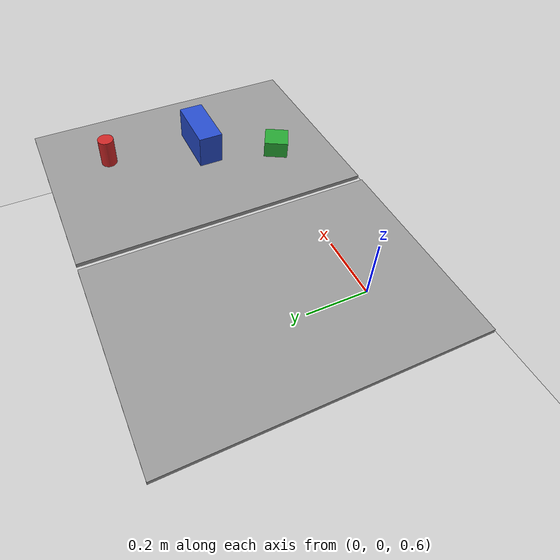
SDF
<sdf version="1.4">
 <world name="default">
  <include><uri>model://ground</uri><name>ground</name><pose>-0.20 0.60 0.0 0 0 0</pose></include>
  <light type="directional" name="lab_light">
   <pose>1.36691 -3.17532 2.46409 1.29615 -0 0</pose>
   <diffuse>.8 .8 .8 1</diffuse>
   <specular>.2 .2 .2 1</specular>
   <attenuation>
    <range>20</range>
    <constant>0.9</constant>
    <linear>0.01</linear>
    <quadratic>0.001</quadratic>
   </attenuation>
   <direction>0 0 -1</direction>
  </light>
  <include>
   <uri>model://optical_table</uri>
   <static>true</static>
   <name>optical_table_1</name>
   <pose>0 0.3 0.727 0 -0 1.5708</pose>
  </include>
  <include>
   <uri>model://optical_table</uri>
   <static>true</static>
   <name>optical_table</name>
   <pose>0.62 0.3 0.727 0 -0 1.5708</pose>
  </include>
  <include>
   <uri>model://RedCylinder</uri>
   <static>false</static>
   <name>RedCylinder</name>
   <pose>0.7 0.55 0.75 0 -0 0</pose>
  </include>
  <include>
   <uri>model://BlueCuboid</uri>
   <static>false</static>
   <name>BlueCuboid</name>
   <pose>0.65 0.25 0.75 0 -0 1.57</pose>
  </include>
  <include>
   <uri>model://GreenCube</uri>
   <static>false</static>
   <name>GreenCube</name>
   <pose>0.54 0.03 0.75 0 -0 -0.5</pose>
  </include>
  <physics type="ode">
   <gravity>0.000000 0.000000 -9.810000</gravity>
   <ode>
    <solver><type>quick</type><iters>100</iters><precon_iters>0</precon_iters><sor>1.000000</sor></solver>
    <constraints>
     <cfm>0.000000</cfm>
     <erp>0.500000</erp>
     <contact_max_correcting_vel>1000.000000</contact_max_correcting_vel>
     <contact_surface_layer>0.00000</contact_surface_layer>
    </constraints>
   </ode>
   <real_time_update_rate>1000.000000</real_time_update_rate>
   <max_step_size>0.001000</max_step_size>
  </physics>
  <scene><ambient>0.4 0.4 0.4 1</ambient><background>0.7 0.7 1 1</background><shadows>1</shadows></scene>
 </world>
</sdf>

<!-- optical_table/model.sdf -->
<sdf version='1.6'>
  <model name='optical_table'>
    <link name='link_0'>
      <pose frame=''>0 0 0 0 -0 0</pose>
      <inertial>
        <mass>1</mass>
        <inertia>
          <ixx>0.166667</ixx>
          <ixy>0</ixy>
          <ixz>0</ixz>
          <iyy>0.166667</iyy>
          <iyz>0</iyz>
          <izz>0.166667</izz>
        </inertia>
        <pose frame=''>0 0 0 0 -0 0</pose>
      </inertial>
      <gravity>0</gravity>
      <self_collide>0</self_collide>
      <kinematic>0</kinematic>
      <visual name='visual'>
        <pose frame=''>0 0 0 0 -0 0</pose>
        <geometry>
          <box>
            <size>0.9 0.6 0.0127</size>
          </box>
        </geometry>
        <material>
          <lighting>1</lighting>
          <script>
            <uri>file://media/materials/scripts/gazebo.material</uri>
            <name>Gazebo/Grey</name>
          </script>
          <ambient>0.3 0.3 0.3 1</ambient>
          <diffuse>0.7 0.7 0.7 1</diffuse>
          <specular>0.01 0.01 0.01 1</specular>
          <emissive>0 0 0 1</emissive>
          <shader type='vertex'>
            <normal_map>__default__</normal_map>
          </shader>
        </material>
        <cast_shadows>1</cast_shadows>
        <transparency>0</transparency>
      </visual>
      <collision name='collision'>
        <laser_retro>0</laser_retro>
        <max_contacts>10</max_contacts>
        <pose frame=''>0 0 0 0 -0 0</pose>
        <geometry>
          <box>
            <size>0.9 0.6 0.0127</size>
          </box>
        </geometry>
        <surface>
          <friction>
            <ode>
              <mu>1</mu>
              <mu2>1</mu2>
              <fdir1>0 0 0</fdir1>
              <slip1>0</slip1>
              <slip2>0</slip2>
            </ode>
            <torsional>
              <coefficient>1</coefficient>
              <patch_radius>0</patch_radius>
              <surface_radius>0</surface_radius>
              <use_patch_radius>1</use_patch_radius>
              <ode>
                <slip>0</slip>
              </ode>
            </torsional>
          </friction>
          <bounce>
            <restitution_coefficient>0</restitution_coefficient>
            <threshold>1e+06</threshold>
          </bounce>
          <contact>
            <collide_without_contact>0</collide_without_contact>
            <collide_without_contact_bitmask>1</collide_without_contact_bitmask>
            <collide_bitmask>1</collide_bitmask>
            <ode>
              <soft_cfm>0</soft_cfm>
              <soft_erp>0.2</soft_erp>
              <kp>1e+13</kp>
              <kd>1</kd>
              <max_vel>0.01</max_vel>
              <min_depth>0</min_depth>
            </ode>
            <bullet>
              <split_impulse>1</split_impulse>
              <split_impulse_penetration_threshold>-0.01</split_impulse_penetration_threshold>
              <soft_cfm>0</soft_cfm>
              <soft_erp>0.2</soft_erp>
              <kp>1e+13</kp>
              <kd>1</kd>
            </bullet>
          </contact>
        </surface>
      </collision>
    </link>
    <static>0</static>
    <allow_auto_disable>1</allow_auto_disable>
  </model>
</sdf>

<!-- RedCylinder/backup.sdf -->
<sdf version='1.6'>
  <model name='RedCylinder'>
    <link name='link_0'>
      <pose frame=''>0 0 0 0 -0 0</pose>
      <inertial>
        <mass>0.75</mass>
        <inertia>
          <ixx>0.145833</ixx>
          <ixy>0</ixy>
          <ixz>0</ixz>
          <iyy>0.145833</iyy>
          <iyz>0</iyz>
          <izz>0.125</izz>
        </inertia>
        <pose frame=''>0 0 0 0 -0 0</pose>
      </inertial>
      <gravity>1</gravity>
      <self_collide>0</self_collide>
      <kinematic>0</kinematic>
      <visual name='visual'>
        <pose frame=''>0 0 0 0 -0 0</pose>
        <geometry>
          <cylinder>
            <radius>0.025</radius>
            <length>0.15</length>
          </cylinder>
        </geometry>
        <material>
          <lighting>1</lighting>
          <script>
            <uri>file://media/materials/scripts/gazebo.material</uri>
            <name>Gazebo/Red</name>
          </script>
          <ambient>0.8 0.1 0.1 1</ambient>
          <diffuse>0.7 0.1 0.1 1</diffuse>
          <specular>0.01 0.01 0.01 1</specular>
          <emissive>0 0 0 1</emissive>
          <shader type='vertex'>
            <normal_map>__default__</normal_map>
          </shader>
        </material>
        <cast_shadows>1</cast_shadows>
        <transparency>0</transparency>
      </visual>
      <collision name='collision'>
        <laser_retro>0</laser_retro>
        <max_contacts>10</max_contacts>
        <pose frame=''>0 0 0 0 -0 0</pose>
        <geometry>
          <cylinder>
            <radius>0.025</radius>
            <length>0.1</length>
          </cylinder>
        </geometry>
        <surface>
          <friction>
            <ode>
              <mu>1</mu>
              <mu2>1</mu2>
              <fdir1>0 0 0</fdir1>
              <slip1>0</slip1>
              <slip2>0</slip2>
            </ode>
            <torsional>
              <coefficient>1</coefficient>
              <patch_radius>0</patch_radius>
              <surface_radius>0</surface_radius>
              <use_patch_radius>1</use_patch_radius>
              <ode>
                <slip>0</slip>
              </ode>
            </torsional>
          </friction>
          <bounce>
            <restitution_coefficient>0</restitution_coefficient>
            <threshold>1e+06</threshold>
          </bounce>
          <contact>
            <collide_without_contact>0</collide_without_contact>
            <collide_without_contact_bitmask>1</collide_without_contact_bitmask>
            <collide_bitmask>1</collide_bitmask>
            <ode>
              <soft_cfm>0</soft_cfm>
              <soft_erp>0.2</soft_erp>
              <kp>1e+13</kp>
              <kd>1</kd>
              <max_vel>0.01</max_vel>
              <min_depth>0</min_depth>
            </ode>
            <bullet>
              <split_impulse>1</split_impulse>
              <split_impulse_penetration_threshold>-0.01</split_impulse_penetration_threshold>
              <soft_cfm>0</soft_cfm>
              <soft_erp>0.2</soft_erp>
              <kp>1e+13</kp>
              <kd>1</kd>
            </bullet>
          </contact>
        </surface>
      </collision>
    </link>
    <static>0</static>
    <allow_auto_disable>1</allow_auto_disable>
  </model>
</sdf>

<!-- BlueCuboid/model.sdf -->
<sdf version='1.6'>
  <model name='BlueCuboid'>
    <link name='link_0'>
      <pose frame=''>0 0 0 0 -0 0</pose>
      <inertial>
        <mass>0.5</mass>
        <inertia>
          <ixx>0.166667</ixx>
          <ixy>0</ixy>
          <ixz>0</ixz>
          <iyy>0.166667</iyy>
          <iyz>0</iyz>
          <izz>0.166667</izz>
        </inertia>
        <pose frame=''>0 0 0 0 -0 0</pose>
      </inertial>
      <gravity>1</gravity>
      <self_collide>0</self_collide>
      <kinematic>0</kinematic>
      <visual name='visual'>
        <pose frame=''>0 0 0 0 -0 0</pose>
        <geometry>
          <box>
            <size>0.075 0.175 0.175</size>
          </box>
        </geometry>
        <material>
          <lighting>1</lighting>
          <script>
            <uri>file://media/materials/scripts/gazebo.material</uri>
            <name>Gazebo/Blue</name>
          </script>
          <ambient>0.05 0.1 0.8 1</ambient>
          <diffuse>0.1 0.3 0.8 1</diffuse>
          <specular>0.01 0.21 0.01 1</specular>
          <emissive>0 0 0 1</emissive>
          <shader type='vertex'>
            <normal_map>__default__</normal_map>
          </shader>
        </material>
        <cast_shadows>1</cast_shadows>
        <transparency>0</transparency>
      </visual>
      <collision name='collision'>
        <laser_retro>0</laser_retro>
        <max_contacts>10</max_contacts>
        <pose frame=''>0 0 0 0 -0 0</pose>
        <geometry>
          <box>
            <size>0.075 0.175 0.175</size>
          </box>
        </geometry>
        <surface>
          <friction>
            <ode>
              <mu>1</mu>
              <mu2>1</mu2>
              <fdir1>0 0 0</fdir1>
              <slip1>0</slip1>
              <slip2>0</slip2>
            </ode>
            <torsional>
              <coefficient>1</coefficient>
              <patch_radius>0</patch_radius>
              <surface_radius>0</surface_radius>
              <use_patch_radius>1</use_patch_radius>
              <ode>
                <slip>0</slip>
              </ode>
            </torsional>
          </friction>
          <bounce>
            <restitution_coefficient>0</restitution_coefficient>
            <threshold>1e+06</threshold>
          </bounce>
          <contact>
            <collide_without_contact>0</collide_without_contact>
            <collide_without_contact_bitmask>1</collide_without_contact_bitmask>
            <collide_bitmask>1</collide_bitmask>
            <ode>
              <soft_cfm>0</soft_cfm>
              <soft_erp>0.2</soft_erp>
              <kp>1e+13</kp>
              <kd>1</kd>
              <max_vel>0.01</max_vel>
              <min_depth>0</min_depth>
            </ode>
            <bullet>
              <split_impulse>1</split_impulse>
              <split_impulse_penetration_threshold>-0.01</split_impulse_penetration_threshold>
              <soft_cfm>0</soft_cfm>
              <soft_erp>0.2</soft_erp>
              <kp>1e+13</kp>
              <kd>1</kd>
            </bullet>
          </contact>
        </surface>
      </collision>
    </link>
    <static>0</static>
    <allow_auto_disable>1</allow_auto_disable>
  </model>
</sdf>

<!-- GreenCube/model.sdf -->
<sdf version='1.6'>
  <model name='GreenCube'>
    <link name='link_0'>
      <pose frame=''>0 0 0 0 -0 0</pose>
      <inertial>
        <mass>0.5</mass>
        <inertia>
          <ixx>0.166667</ixx>
          <ixy>0</ixy>
          <ixz>0</ixz>
          <iyy>0.166667</iyy>
          <iyz>0</iyz>
          <izz>0.166667</izz>
        </inertia>
        <pose frame=''>0 0 0 0 -0 0</pose>
      </inertial>
      <gravity>1</gravity>
      <self_collide>0</self_collide>
      <kinematic>0</kinematic>
      <visual name='visual'>
        <pose frame=''>0 0 0 0 -0 0</pose>
        <geometry>
          <box>
            <size>0.075 0.075 0.075</size>
          </box>
        </geometry>
        <material>
          <lighting>1</lighting>
          <script>
            <uri>file://media/materials/scripts/gazebo.material</uri>
            <name>Gazebo/Green</name>
          </script>
          <ambient>0.1 0.4 0.1 1</ambient>
          <diffuse>0.3 0.8 0.3 1</diffuse>
          <specular>0.01 0.21 0.01 1</specular>
          <emissive>0 0 0 1</emissive>
          <shader type='vertex'>
            <normal_map>__default__</normal_map>
          </shader>
        </material>
        <cast_shadows>1</cast_shadows>
        <transparency>0</transparency>
      </visual>
      <collision name='collision'>
        <laser_retro>0</laser_retro>
        <max_contacts>10</max_contacts>
        <pose frame=''>0 0 0 0 -0 0</pose>
        <geometry>
          <box>
            <size>0.075 0.075 0.075</size>
          </box>
        </geometry>
        <surface>
          <friction>
            <ode>
              <mu>1</mu>
              <mu2>1</mu2>
              <fdir1>0 0 0</fdir1>
              <slip1>0</slip1>
              <slip2>0</slip2>
            </ode>
            <torsional>
              <coefficient>1</coefficient>
              <patch_radius>0</patch_radius>
              <surface_radius>0</surface_radius>
              <use_patch_radius>1</use_patch_radius>
              <ode>
                <slip>0</slip>
              </ode>
            </torsional>
          </friction>
          <bounce>
            <restitution_coefficient>0</restitution_coefficient>
            <threshold>1e+06</threshold>
          </bounce>
          <contact>
            <collide_without_contact>0</collide_without_contact>
            <collide_without_contact_bitmask>1</collide_without_contact_bitmask>
            <collide_bitmask>1</collide_bitmask>
            <ode>
              <soft_cfm>0</soft_cfm>
              <soft_erp>0.2</soft_erp>
              <kp>1e+13</kp>
              <kd>1</kd>
              <max_vel>0.01</max_vel>
              <min_depth>0</min_depth>
            </ode>
            <bullet>
              <split_impulse>1</split_impulse>
              <split_impulse_penetration_threshold>-0.01</split_impulse_penetration_threshold>
              <soft_cfm>0</soft_cfm>
              <soft_erp>0.2</soft_erp>
              <kp>1e+13</kp>
              <kd>1</kd>
            </bullet>
          </contact>
        </surface>
      </collision>
    </link>
    <static>0</static>
    <allow_auto_disable>1</allow_auto_disable>
  </model>
</sdf>
